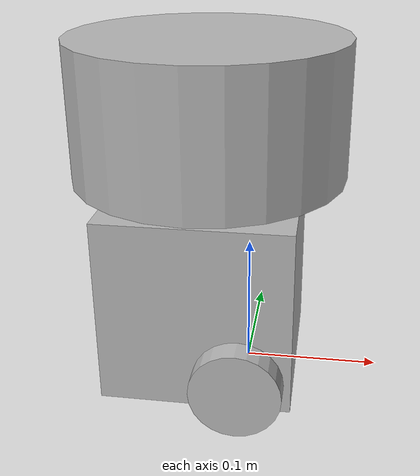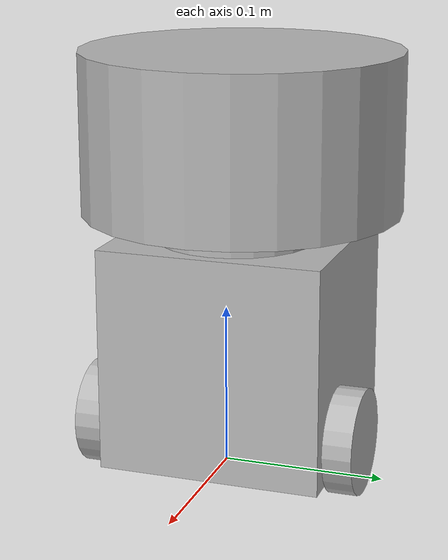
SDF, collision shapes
<?xml version="1.0" ?>
<sdf version="1.5">
  <model name="turtlebot3_burger">
    <pose>0.0 0.0 0.0 0.0 0.0 0.0</pose>

    <link name="base_footprint"/>

    <link name="base_link">

      <inertial>
        <pose>-0.032 0 0.070 0 0 0</pose>
        <inertia>
          <ixx>7.2397393e-01</ixx>
          <ixy>4.686399e-10</ixy>
          <ixz>-1.09525703e-08</ixz>
          <iyy>7.2397393e-01</iyy>
          <iyz>2.8582649e-09</iyz>
          <izz>6.53050163e-01</izz>
        </inertia>
        <mass>8.2573504e-01</mass>
      </inertial>

      <collision name="base_collision">
        <pose>-0.032 0 0.070 0 0 0</pose>
        <geometry>
          <box>
            <size>0.140 0.140 0.140</size>
          </box>
        </geometry>
      </collision>

      <visual name="base_visual">
        <pose>-0.032 0 0 0 0 0</pose>
        <geometry>
          <mesh>
            <uri>model://turtlebot3_common/meshes/burger_base.dae</uri>
            <scale>0.001 0.001 0.001</scale>
          </mesh>
        </geometry>
      </visual>

    </link>

        <link name="velodyne_link">
      <pose>-0.03 0 0.205 0 0 0</pose>
      <inertial>
        <mass>0.1</mass>
        <inertia>
          <ixx>0.001</ixx>
          <ixy>0.000</ixy>
          <ixz>0.000</ixz>
          <iyy>0.001</iyy>
          <iyz>0.000</iyz>
          <izz>0.001</izz>
        </inertia>
      </inertial>

<visual name="velodyne_visual">
  <geometry>
    <cylinder>
      <radius>0.025</radius>
      <length>0.05</length>
    </cylinder>
  </geometry>
</visual>

      <collision name="velodyne_collision">
        <geometry>
          <cylinder>
            <radius>0.1</radius>
            <length>0.1</length>
          </cylinder>
        </geometry>
      </collision>

     <sensor name='velodyne-VLP16' type='ray'>
        <visualize>0</visualize>
        <update_rate>10</update_rate>
        <ray>
          <scan>
            <horizontal>
              <samples>360</samples>
              <resolution>1</resolution>
              <min_angle>-1.57</min_angle>
              <max_angle>1.57</max_angle>
            </horizontal>
            <vertical>
              <samples>16</samples>
              <resolution>1</resolution>
              <min_angle>-0.261799</min_angle>
              <max_angle>0.261799</max_angle>
            </vertical>
          </scan>
          <range>
            <min>0.3</min>
            <max>131</max>
            <resolution>0.001</resolution>
          </range>
          <noise>
            <type>gaussian</type>
            <mean>0</mean>
            <stddev>0</stddev>
          </noise>
        </ray>
        <plugin name='gazebo_ros_laser_controller' filename='libgazebo_ros_velodyne_laser.so'>
          <ros>
            <namespace>/turtlebot3_burger</namespace>
            <remapping>~/out:=velodyne_points</remapping>
          </ros>
          <output_type>sensor_msgs/PointCloud2</output_type>
          <frame_name>velodyne_link</frame_name>
          <min_range>0.1</min_range>
          <max_range>130.0</max_range>
          <gaussianNoise>0.008</gaussianNoise>
        </plugin>
        <pose>0.125 0 0.2877 0 -0 0</pose>
      </sensor>
    </link>

    <link name="imu_link">
      <sensor name="tb3_imu" type="imu">
        <always_on>true</always_on>
        <update_rate>200</update_rate>
        <imu>
          <angular_velocity>
            <x>
              <noise type="gaussian">
                <mean>0.0</mean>
                <stddev>2e-4</stddev>
              </noise>
            </x>
            <y>
              <noise type="gaussian">
                <mean>0.0</mean>
                <stddev>2e-4</stddev>
              </noise>
            </y>
            <z>
              <noise type="gaussian">
                <mean>0.0</mean>
                <stddev>2e-4</stddev>
              </noise>
            </z>
          </angular_velocity>
          <linear_acceleration>
            <x>
              <noise type="gaussian">
                <mean>0.0</mean>
                <stddev>1.7e-2</stddev>
              </noise>
            </x>
            <y>
              <noise type="gaussian">
                <mean>0.0</mean>
                <stddev>1.7e-2</stddev>
              </noise>
            </y>
            <z>
              <noise type="gaussian">
                <mean>0.0</mean>
                <stddev>1.7e-2</stddev>
              </noise>
            </z>
          </linear_acceleration>
        </imu>
        <plugin name="turtlebot3_imu" filename="libgazebo_ros_imu_sensor.so">
          <ros>
            <remapping>~/out:=imu</remapping>
          </ros>
        </plugin>
      </sensor>
    </link>

    <link name="base_scan">
      <inertial>
        <pose>-0.020 0 0.161 0 0 0</pose>
        <inertia>
          <ixx>0.001</ixx>
          <ixy>0.000</ixy>
          <ixz>0.000</ixz>
          <iyy>0.001</iyy>
          <iyz>0.000</iyz>
          <izz>0.001</izz>
        </inertia>
        <mass>0.114</mass>
      </inertial>

      <collision name="lidar_sensor_collision">
        <pose>-0.020 0 0.161 0 0 0</pose>
        <geometry>
          <cylinder>
            <radius>0.0508</radius>
            <length>0.055</length>
          </cylinder>
        </geometry>
      </collision>

      <visual name="lidar_sensor_visual">
        <pose>-0.032 0 0.171 0 0 0</pose>
        <geometry>
          <mesh>
            <uri>model://turtlebot3_common/meshes/lds.dae</uri>
            <scale>0.001 0.001 0.001</scale>
          </mesh>
        </geometry>
      </visual>

      <sensor name="hls_lfcd_lds" type="gpu_ray">
        <always_on>true</always_on>
        <visualize>true</visualize>
        <pose>-0.032 0 0.171 0 0 0</pose>
        <update_rate>5</update_rate>
        <ray>
          <scan>
            <horizontal>
              <samples>360</samples>
              <resolution>1.000000</resolution>
              <min_angle>0.000000</min_angle>
              <max_angle>6.280000</max_angle>
            </horizontal>
          </scan>
          <range>
            <min>0.120000</min>
            <max>3.5</max>
            <resolution>0.015000</resolution>
          </range>
          <noise>
            <type>gaussian</type>
            <mean>0.0</mean>
            <stddev>0.01</stddev>
          </noise>
        </ray>

        <!-- Add these to improve dynamic object detection -->
        <always_on>1</always_on>
        <update_rate>10</update_rate>

        <plugin name="turtlebot3_laserscan" filename="libgazebo_ros_ray_sensor.so">
          <ros>
            <remapping>~/out:=scan</remapping>
          </ros>
          <output_type>sensor_msgs/LaserScan</output_type>
          <frame_name>base_scan</frame_name>
        </plugin>
      </sensor>
    </link>

    <link name="wheel_left_link">

      <inertial>
        <pose>0 0.08 0.023 -1.57 0 0</pose>
        <inertia>
          <ixx>1.8158194e-03</ixx>
          <ixy>-9.3392e-12</ixy>
          <ixz>1.04909e-11</ixz>
          <iyy>3.2922126e-03</iyy>
          <iyz>5.75694e-11</iyz>
          <izz>1.8158194e-03</izz>
        </inertia>
        <mass>2.8498940e-02</mass>
      </inertial>

      <collision name="wheel_left_collision">
        <pose>0 0.08 0.023 -1.57 0 0</pose>
        <geometry>
          <cylinder>
            <radius>0.033</radius>
            <length>0.018</length>
          </cylinder>
        </geometry>
        <surface>
          <!-- This friction pamareter don't contain reliable data!! -->
          <friction>
            <ode>
              <mu>100000.0</mu>
              <mu2>100000.0</mu2>
              <fdir1>0 0 0</fdir1>
              <slip1>0.0</slip1>
              <slip2>0.0</slip2>
            </ode>
          </friction>
          <contact>
            <ode>
              <soft_cfm>0</soft_cfm>
              <soft_erp>0.2</soft_erp>
              <kp>1e+5</kp>
              <kd>1</kd>
              <max_vel>0.01</max_vel>
              <min_depth>0.001</min_depth>
            </ode>
          </contact>
        </surface>
      </collision>

      <visual name="wheel_left_visual">
        <pose>0 0.08 0.023 0 0 0</pose>
        <geometry>
          <mesh>
            <uri>model://turtlebot3_common/meshes/tire.dae</uri>
            <scale>0.001 0.001 0.001</scale>
          </mesh>
        </geometry>
      </visual>
    </link>

    <link name="wheel_right_link">

      <inertial>
        <pose>0.0 -0.08 0.023 -1.57 0 0</pose>
        <inertia>
          <ixx>1.8158194e-03</ixx>
          <ixy>-9.3392e-12</ixy>
          <ixz>1.04909e-11</ixz>
          <iyy>3.2922126e-03</iyy>
          <iyz>5.75694e-11</iyz>
          <izz>1.8158194e-03</izz>
        </inertia>
        <mass>2.8498940e-02</mass>
      </inertial>

      <collision name="wheel_right_collision">
        <pose>0.0 -0.08 0.023 -1.57 0 0</pose>
        <geometry>
          <cylinder>
            <radius>0.033</radius>
            <length>0.018</length>
          </cylinder>
        </geometry>
        <surface>
          <!-- This friction pamareter don't contain reliable data!! -->
          <friction>
            <ode>
              <mu>100000.0</mu>
              <mu2>100000.0</mu2>
              <fdir1>0 0 0</fdir1>
              <slip1>0.0</slip1>
              <slip2>0.0</slip2>
            </ode>
          </friction>
          <contact>
            <ode>
              <soft_cfm>0</soft_cfm>
              <soft_erp>0.2</soft_erp>
              <kp>1e+5</kp>
              <kd>1</kd>
              <max_vel>0.01</max_vel>
              <min_depth>0.001</min_depth>
            </ode>
          </contact>
        </surface>
      </collision>

      <visual name="wheel_right_visual">
        <pose>0.0 -0.08 0.023 0 0 0</pose>
        <geometry>
          <mesh>
            <uri>model://turtlebot3_common/meshes/tire.dae</uri>
            <scale>0.001 0.001 0.001</scale>
          </mesh>
        </geometry>
      </visual>
    </link>

    <link name='caster_back_link'>
      <pose>-0.081 0 -0.004 -1.57 0 0</pose>
      <inertial>
        <mass>0.005</mass>
        <inertia>
          <ixx>0.001</ixx>
          <ixy>0.000</ixy>
          <ixz>0.000</ixz>
          <iyy>0.001</iyy>
          <iyz>0.000</iyz>
          <izz>0.001</izz>
        </inertia>
      </inertial>
      <collision name='collision'>
        <geometry>
          <sphere>
            <radius>0.005000</radius>
          </sphere>
        </geometry>
        <surface>
          <contact>
            <ode>
              <soft_cfm>0</soft_cfm>
              <soft_erp>0.2</soft_erp>
              <kp>1e+5</kp>
              <kd>1</kd>
              <max_vel>0.01</max_vel>
              <min_depth>0.001</min_depth>
            </ode>
          </contact>
        </surface>
      </collision>
    </link>

    <joint name="base_joint" type="fixed">
      <parent>base_footprint</parent>
      <child>base_link</child>
      <pose>0.0 0.0 0.010 0 0 0</pose>
    </joint>

    <joint name="wheel_left_joint" type="revolute">
      <parent>base_link</parent>
      <child>wheel_left_link</child>
      <pose>0.0 0.08 0.023 -1.57 0 0</pose>
      <axis>
        <xyz>0 0 1</xyz>
      </axis>
    </joint>

    <joint name="wheel_right_joint" type="revolute">
      <parent>base_link</parent>
      <child>wheel_right_link</child>
      <pose>0.0 -0.08 0.023 -1.57 0 0</pose>
      <axis>
        <xyz>0 0 1</xyz>
      </axis>
    </joint>

    <joint name='caster_back_joint' type='ball'>
      <parent>base_link</parent>
      <child>caster_back_link</child>
    </joint>

    <joint name="imu_joint" type="fixed">
      <parent>base_link</parent>
      <child>imu_link</child>
      <pose>-0.032 0 0.068 0 0 0</pose>
      <axis>
        <xyz>0 0 1</xyz>
      </axis>
    </joint>

    <joint name="lidar_joint" type="fixed">
      <parent>base_link</parent>
      <child>base_scan</child>
      <pose>-0.032 0 0.171 0 0 0</pose>
      <axis>
        <xyz>0 0 1</xyz>
      </axis>
    </joint>

        <joint name="velodyne_joint" type="fixed">
      <parent>base_link</parent>
      <child>velodyne_link</child>
      <pose>0 0 0.3 0 0 0</pose>
    </joint>

<link name="camera_link">
  <pose>0 0 0.2 0 0 0</pose>
  <inertial>
    <mass>0.035</mass>
    <inertia>
      <ixx>0.001</ixx>
      <ixy>0.000</ixy>
      <ixz>0.000</ixz>
      <iyy>0.001</iyy>
      <iyz>0.000</iyz>
      <izz>0.001</izz>
    </inertia>
  </inertial>

  <visual name="camera_visual">
    <geometry>
      <box>
        <size>0.025 0.025 0.025</size>
      </box>
    </geometry>
  </visual>

  <collision name="camera_collision">
    <geometry>
      <box>
        <size>0.025 0.025 0.025</size>
      </box>
    </geometry>
  </collision>

  <sensor name="camera" type="camera">
    <camera>
      <horizontal_fov>1.396</horizontal_fov>
      <image>
        <width>640</width>
        <height>480</height>
        <format>R8G8B8</format>
      </image>
      <clip>
        <near>0.1</near>
        <far>10.0</far>
      </clip>
    </camera>
    <always_on>true</always_on>
    <update_rate>30.0</update_rate>
    <plugin name="camera_plugin" filename="libgazebo_ros_camera.so">
      <ros>
        <namespace>/turtlebot3_burger</namespace>
        <remapping>image_raw:=camera/image_raw</remapping>
        <remapping>camera_info:=camera/camera_info</remapping>
      </ros>
      <camera_name>camera</camera_name>
      <frame_name>camera_link</frame_name>
      <hack_baseline>0.07</hack_baseline>
    </plugin>
  </sensor>
</link>

<joint name="camera_joint" type="fixed">
  <parent>base_link</parent>
  <child>camera_link</child>
  <pose>0 0 0.2 0 0 0</pose>
</joint>

    <plugin name="turtlebot3_diff_drive" filename="libgazebo_ros_diff_drive.so">

      <ros>
      </ros>

      <update_rate>30</update_rate>

      <!-- wheels -->
      <left_joint>wheel_left_joint</left_joint>
      <right_joint>wheel_right_joint</right_joint>

      <!-- kinematics -->
      <wheel_separation>0.160</wheel_separation>
      <wheel_diameter>0.066</wheel_diameter>

      <!-- limits -->
      <max_wheel_torque>20</max_wheel_torque>
      <max_wheel_acceleration>1.0</max_wheel_acceleration>

      <command_topic>cmd_vel</command_topic>

      <!-- output -->
      <publish_odom>true</publish_odom>
      <publish_odom_tf>true</publish_odom_tf>
      <publish_wheel_tf>false</publish_wheel_tf>

      <odometry_topic>odom</odometry_topic>
      <odometry_frame>odom</odometry_frame>
      <robot_base_frame>base_footprint</robot_base_frame>

    </plugin>

    <plugin name="turtlebot3_joint_state" filename="libgazebo_ros_joint_state_publisher.so">
      <ros>
        <remapping>~/out:=joint_states</remapping>
      </ros>
      <update_rate>30</update_rate>
      <joint_name>wheel_left_joint</joint_name>
      <joint_name>wheel_right_joint</joint_name>
    </plugin>

    <!-- CAMERA -->

  </model>

</sdf>
